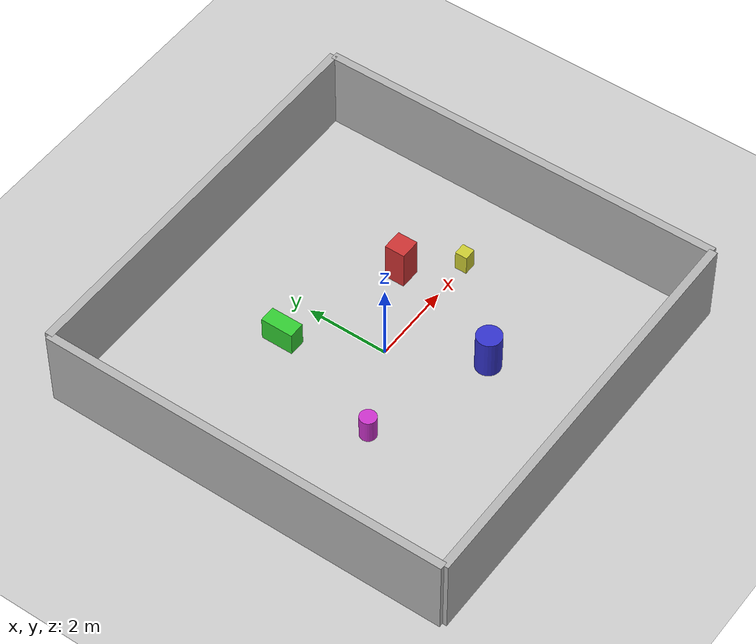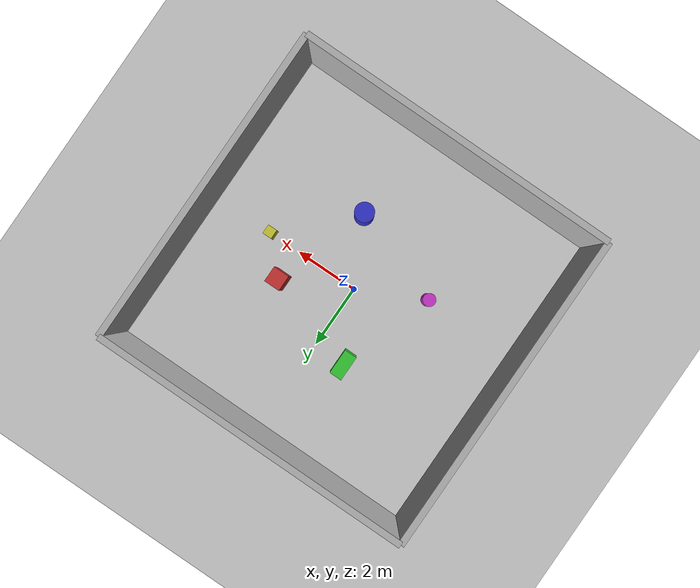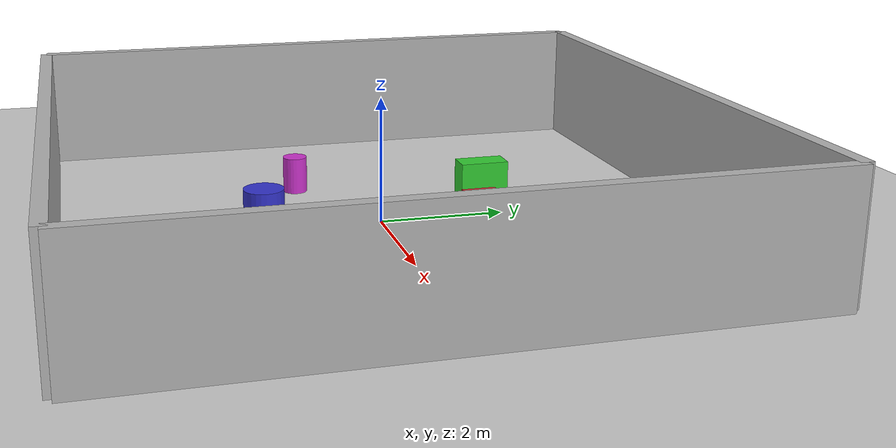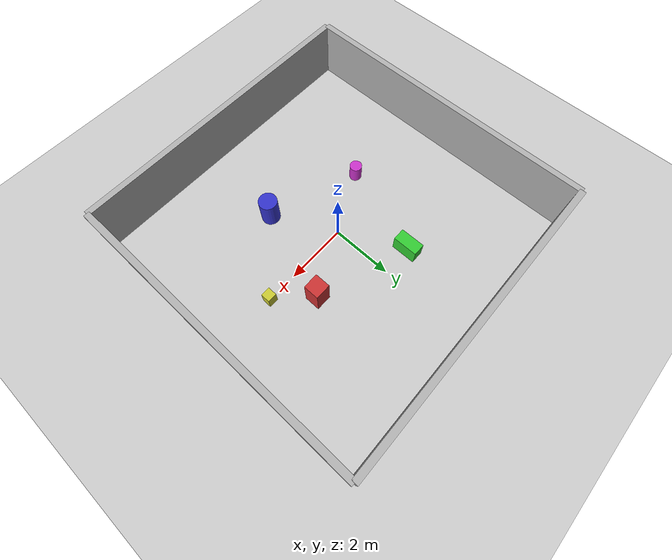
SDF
<?xml version="1.0" ?>
<sdf version="1.4">
  <world name="turtlebot3_detector_world">

    <!-- Global Light Source -->
    <include>
      <uri>model://sun</uri>
    </include>

    <!-- Ground Plane -->
    <include>
      <uri>model://ground_plane</uri>
    </include>

    <!-- Static Obstacles -->

    <!-- Static Box 1 -->
    <model name="static_box_1">
      <pose>2 1 0.5 0 0 0</pose>
      <static>true</static>
      <link name="link">
        <visual name="visual">
          <geometry>
            <box>
              <size>0.5 0.5 1.0</size>
            </box>
          </geometry>
          <material>
            <ambient>0.8 0.2 0.2 1</ambient>
            <diffuse>0.8 0.2 0.2 1</diffuse>
          </material>
        </visual>
        <collision name="collision">
          <geometry>
            <box>
              <size>0.5 0.5 1.0</size>
            </box>
          </geometry>
        </collision>
      </link>
    </model>

    <!-- Static Box 2 -->
    <model name="static_box_2">
      <pose>-1 2 0.3 0 0 0</pose>
      <static>true</static>
      <link name="link">
        <visual name="visual">
          <geometry>
            <box>
              <size>0.4 0.8 0.6</size>
            </box>
          </geometry>
          <material>
            <ambient>0.2 0.8 0.2 1</ambient>
            <diffuse>0.2 0.8 0.2 1</diffuse>
          </material>
        </visual>
        <collision name="collision">
          <geometry>
            <box>
              <size>0.4 0.8 0.6</size>
            </box>
          </geometry>
        </collision>
      </link>
    </model>

    <!-- Static Cylinder -->
    <model name="static_cylinder">
      <pose>1 -2 0.5 0 0 0</pose>
      <static>true</static>
      <link name="link">
        <visual name="visual">
          <geometry>
            <cylinder>
              <radius>0.3</radius>
              <length>1.0</length>
            </cylinder>
          </geometry>
          <material>
            <ambient>0.2 0.2 0.8 1</ambient>
            <diffuse>0.2 0.2 0.8 1</diffuse>
          </material>
        </visual>
        <collision name="collision">
          <geometry>
            <cylinder>
              <radius>0.3</radius>
              <length>1.0</length>
            </cylinder>
          </geometry>
        </collision>
      </link>
    </model>

    <!-- Moving Dynamic Obstacle 1 -->
    <model name="dynamic_box_1">
      <pose>3 0 0.25 0 0 0</pose>
      <static>false</static>
      <link name="link">
        <inertial>
          <mass>1.0</mass>
          <inertia>
            <ixx>0.083</ixx>
            <ixy>0.0</ixy>
            <ixz>0.0</ixz>
            <iyy>0.083</iyy>
            <iyz>0.0</iyz>
            <izz>0.083</izz>
          </inertia>
        </inertial>
        <visual name="visual">
          <geometry>
            <box>
              <size>0.3 0.3 0.5</size>
            </box>
          </geometry>
          <material>
            <ambient>0.8 0.8 0.2 1</ambient>
            <diffuse>0.8 0.8 0.2 1</diffuse>
          </material>
        </visual>
        <collision name="collision">
          <geometry>
            <box>
              <size>0.3 0.3 0.5</size>
            </box>
          </geometry>
        </collision>
      </link>

      <!-- Plugin to make it move -->
      <plugin name="box_mover" filename="libgazebo_ros_planar_move.so">
        <commandTopic>/dynamic_box_1/cmd_vel</commandTopic>
        <odometryTopic>/dynamic_box_1/odom</odometryTopic>
        <odometryFrame>odom</odometryFrame>
        <robotBaseFrame>dynamic_box_1</robotBaseFrame>
      </plugin>
    </model>

    <!-- Moving Dynamic Obstacle 2 -->
    <model name="dynamic_cylinder">
      <pose>-2 -1 0.3 0 0 0</pose>
      <static>false</static>
      <link name="link">
        <inertial>
          <mass>0.8</mass>
          <inertia>
            <ixx>0.1</ixx>
            <ixy>0.0</ixy>
            <ixz>0.0</ixz>
            <iyy>0.1</iyy>
            <iyz>0.0</iyz>
            <izz>0.05</izz>
          </inertia>
        </inertial>
        <visual name="visual">
          <geometry>
            <cylinder>
              <radius>0.2</radius>
              <length>0.6</length>
            </cylinder>
          </geometry>
          <material>
            <ambient>0.8 0.2 0.8 1</ambient>
            <diffuse>0.8 0.2 0.8 1</diffuse>
          </material>
        </visual>
        <collision name="collision">
          <geometry>
            <cylinder>
              <radius>0.2</radius>
              <length>0.6</length>
            </cylinder>
          </geometry>
        </collision>
      </link>

      <!-- Plugin to make it move -->
      <plugin name="cylinder_mover" filename="libgazebo_ros_planar_move.so">
        <commandTopic>/dynamic_cylinder/cmd_vel</commandTopic>
        <odometryTopic>/dynamic_cylinder/odom</odometryTopic>
        <odometryFrame>odom</odometryFrame>
        <robotBaseFrame>dynamic_cylinder</robotBaseFrame>
      </plugin>
    </model>

    <!-- Walls to create boundaries -->
    <model name="wall_north">
      <pose>0 5 1 0 0 0</pose>
      <static>true</static>
      <link name="link">
        <visual name="visual">
          <geometry>
            <box>
              <size>10 0.2 2</size>
            </box>
          </geometry>
          <material>
            <ambient>0.7 0.7 0.7 1</ambient>
            <diffuse>0.7 0.7 0.7 1</diffuse>
          </material>
        </visual>
        <collision name="collision">
          <geometry>
            <box>
              <size>10 0.2 2</size>
            </box>
          </geometry>
        </collision>
      </link>
    </model>

    <model name="wall_south">
      <pose>0 -5 1 0 0 0</pose>
      <static>true</static>
      <link name="link">
        <visual name="visual">
          <geometry>
            <box>
              <size>10 0.2 2</size>
            </box>
          </geometry>
          <material>
            <ambient>0.7 0.7 0.7 1</ambient>
            <diffuse>0.7 0.7 0.7 1</diffuse>
          </material>
        </visual>
        <collision name="collision">
          <geometry>
            <box>
              <size>10 0.2 2</size>
            </box>
          </geometry>
        </collision>
      </link>
    </model>

    <model name="wall_east">
      <pose>5 0 1 0 0 0</pose>
      <static>true</static>
      <link name="link">
        <visual name="visual">
          <geometry>
            <box>
              <size>0.2 10 2</size>
            </box>
          </geometry>
          <material>
            <ambient>0.7 0.7 0.7 1</ambient>
            <diffuse>0.7 0.7 0.7 1</diffuse>
          </material>
        </visual>
        <collision name="collision">
          <geometry>
            <box>
              <size>0.2 10 2</size>
            </box>
          </geometry>
        </collision>
      </link>
    </model>

    <model name="wall_west">
      <pose>-5 0 1 0 0 0</pose>
      <static>true</static>
      <link name="link">
        <visual name="visual">
          <geometry>
            <box>
              <size>0.2 10 2</size>
            </box>
          </geometry>
          <material>
            <ambient>0.7 0.7 0.7 1</ambient>
            <diffuse>0.7 0.7 0.7 1</diffuse>
          </material>
        </visual>
        <collision name="collision">
          <geometry>
            <box>
              <size>0.2 10 2</size>
            </box>
          </geometry>
        </collision>
      </link>
    </model>

  </world>
</sdf>
